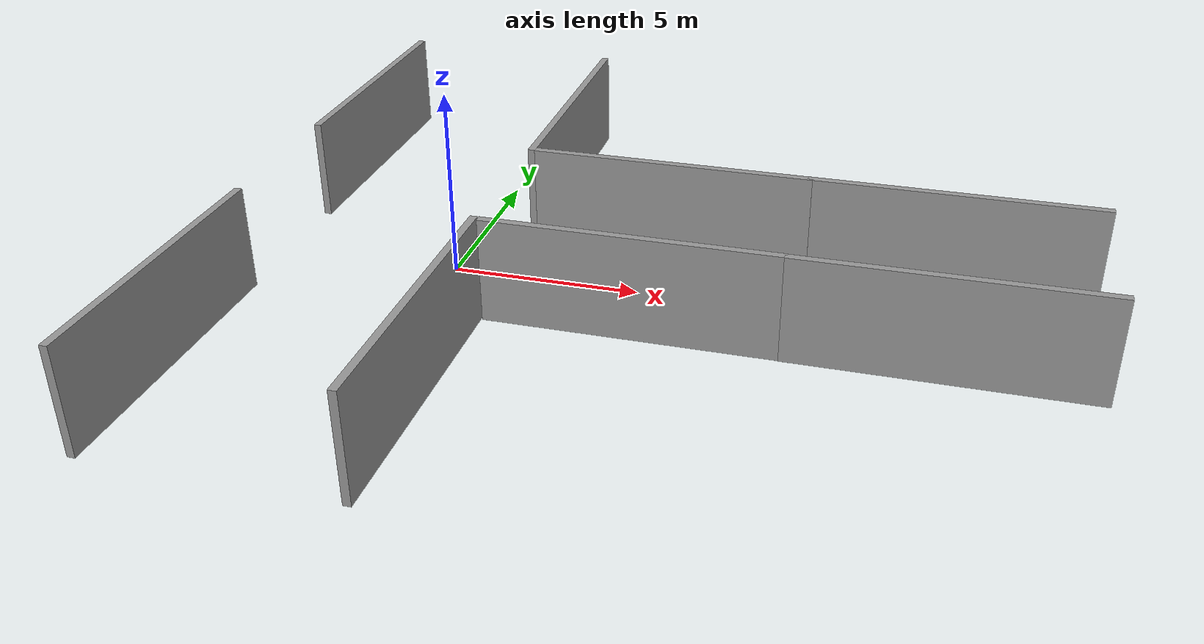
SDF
<sdf version="1.6">
 <world name="default">
  <light name="sun" type="directional">
   <pose>0 0 10 0 -0 0</pose>
   <diffuse>0.8 0.8 0.8 1</diffuse>
   <specular>0.2 0.2 0.2 1</specular>
   <attenuation>
    <range>1000</range>
    <constant>0.9</constant>
    <linear>0.01</linear>
    <quadratic>0.001</quadratic>
   </attenuation>
   <direction>-0.5 0.1 -0.9</direction>
  </light>
  <gravity>0 0 -9.8</gravity>
  <magnetic_field>6e-06 2.3e-05 -4.2e-05</magnetic_field>
  <atmosphere type="adiabatic"/>
  <physics name="default_physics" default="0" type="ode">
   <max_step_size>0.001</max_step_size>
   <real_time_factor>1</real_time_factor>
   <real_time_update_rate>1000</real_time_update_rate>
  </physics>
  <scene><ambient>0.4 0.4 0.4 1</ambient><background>0.7 0.7 0.7 1</background><shadows>1</shadows></scene>
  <audio><device>default</device></audio>
  <spherical_coordinates>
   <surface_model>EARTH_WGS84</surface_model>
   <latitude_deg>0</latitude_deg>
   <longitude_deg>0</longitude_deg>
   <elevation>0</elevation>
   <heading_deg>0</heading_deg>
  </spherical_coordinates>
  <model name="grey_wall">
   <static>1</static>
   <link name="link">
    <pose>0 0 1.4 0 -0 0</pose>
    <collision name="collision"><geometry><box><size>7.5 0.2 2.8</size></box></geometry></collision>
    <visual name="visual">
     <cast_shadows>0</cast_shadows>
     <geometry><box><size>7.5 0.2 2.8</size></box></geometry>
     <material>
      <script>
       <uri>model://grey_wall/materials/scripts</uri>
       <uri>model://grey_wall/materials/textures</uri>
       <name>vrc/grey_wall</name>
      </script>
     </material>
    </visual>
   </link>
   <pose>12.7499 2.12959 0 0 -0 0</pose>
  </model>
  <model name="grey_wall_clone">
   <static>1</static>
   <link name="link">
    <pose>0 0 1.4 0 -0 0</pose>
    <collision name="collision"><geometry><box><size>7.5 0.2 2.8</size></box></geometry></collision>
    <visual name="visual">
     <cast_shadows>0</cast_shadows>
     <geometry><box><size>7.5 0.2 2.8</size></box></geometry>
     <material>
      <script>
       <uri>model://grey_wall/materials/scripts</uri>
       <uri>model://grey_wall/materials/textures</uri>
       <name>vrc/grey_wall</name>
      </script>
     </material>
    </visual>
   </link>
   <pose>12.7526 -2.13637 0 0 -0 0</pose>
  </model>
  <model name="grey_wall_clone_clone">
   <static>1</static>
   <link name="link">
    <pose>0 0 1.4 0 -0 0</pose>
    <collision name="collision"><geometry><box><size>7.5 0.2 2.8</size></box></geometry></collision>
    <visual name="visual">
     <cast_shadows>0</cast_shadows>
     <geometry><box><size>7.5 0.2 2.8</size></box></geometry>
     <material>
      <script>
       <uri>model://grey_wall/materials/scripts</uri>
       <uri>model://grey_wall/materials/textures</uri>
       <name>vrc/grey_wall</name>
      </script>
     </material>
    </visual>
   </link>
   <pose>5.31653 -2.12378 0 0 -0 0</pose>
  </model>
  <model name="grey_wall_clone_clone_clone">
   <static>1</static>
   <link name="link">
    <pose>0 0 1.4 0 -0 0</pose>
    <collision name="collision"><geometry><box><size>7.5 0.2 2.8</size></box></geometry></collision>
    <visual name="visual">
     <cast_shadows>0</cast_shadows>
     <geometry><box><size>7.5 0.2 2.8</size></box></geometry>
     <material>
      <script>
       <uri>model://grey_wall/materials/scripts</uri>
       <uri>model://grey_wall/materials/textures</uri>
       <name>vrc/grey_wall</name>
      </script>
     </material>
    </visual>
   </link>
   <pose>5.37313 2.12372 0 0 -0 0</pose>
  </model>
  <model name="grey_wall_clone_clone_clone_clone">
   <static>1</static>
   <link name="link">
    <pose>0 0 1.4 0 -0 0</pose>
    <collision name="collision"><geometry><box><size>7.5 0.2 2.8</size></box></geometry></collision>
    <visual name="visual">
     <cast_shadows>0</cast_shadows>
     <geometry><box><size>7.5 0.2 2.8</size></box></geometry>
     <material>
      <script>
       <uri>model://grey_wall/materials/scripts</uri>
       <uri>model://grey_wall/materials/textures</uri>
       <name>vrc/grey_wall</name>
      </script>
     </material>
    </visual>
   </link>
   <pose>1.53346 5.79916 0 0 0 -1.5708</pose>
  </model>
  <model name="grey_wall_clone_clone_clone_clone_clone">
   <static>1</static>
   <link name="link">
    <pose>0 0 1.4 0 -0 0</pose>
    <collision name="collision"><geometry><box><size>7.5 0.2 2.8</size></box></geometry></collision>
    <visual name="visual">
     <cast_shadows>0</cast_shadows>
     <geometry><box><size>7.5 0.2 2.8</size></box></geometry>
     <material>
      <script>
       <uri>model://grey_wall/materials/scripts</uri>
       <uri>model://grey_wall/materials/textures</uri>
       <name>vrc/grey_wall</name>
      </script>
     </material>
    </visual>
   </link>
   <pose>1.4392 -5.78645 0 0 0 -1.5708</pose>
  </model>
  <model name="grey_wall_clone_clone_clone_clone_clone_0">
   <static>1</static>
   <link name="link">
    <pose>0 0 1.4 0 -0 0</pose>
    <collision name="collision"><geometry><box><size>7.5 0.2 2.8</size></box></geometry></collision>
    <visual name="visual">
     <cast_shadows>0</cast_shadows>
     <geometry><box><size>7.5 0.2 2.8</size></box></geometry>
     <material>
      <script>
       <uri>model://grey_wall/materials/scripts</uri>
       <uri>model://grey_wall/materials/textures</uri>
       <name>vrc/grey_wall</name>
      </script>
     </material>
    </visual>
   </link>
   <pose>-4.87712 5.92459 0 0 0 -1.5708</pose>
  </model>
  <model name="grey_wall_clone_clone_clone_clone_clone_1">
   <static>1</static>
   <link name="link">
    <pose>0 0 1.4 0 -0 0</pose>
    <collision name="collision"><geometry><box><size>7.5 0.2 2.8</size></box></geometry></collision>
    <visual name="visual">
     <cast_shadows>0</cast_shadows>
     <geometry><box><size>7.5 0.2 2.8</size></box></geometry>
     <material>
      <script>
       <uri>model://grey_wall/materials/scripts</uri>
       <uri>model://grey_wall/materials/textures</uri>
       <name>vrc/grey_wall</name>
      </script>
     </material>
    </visual>
   </link>
   <pose>-4.88408 -5.82083 0 0 0 -1.5708</pose>
  </model>
 </world>
</sdf>
